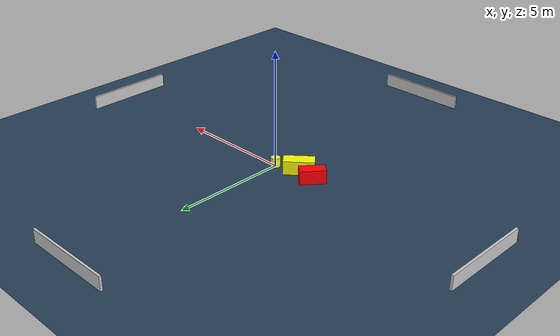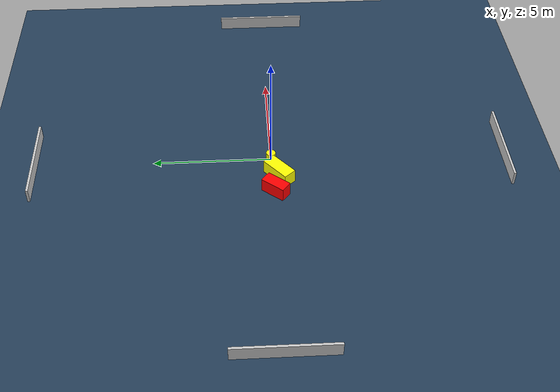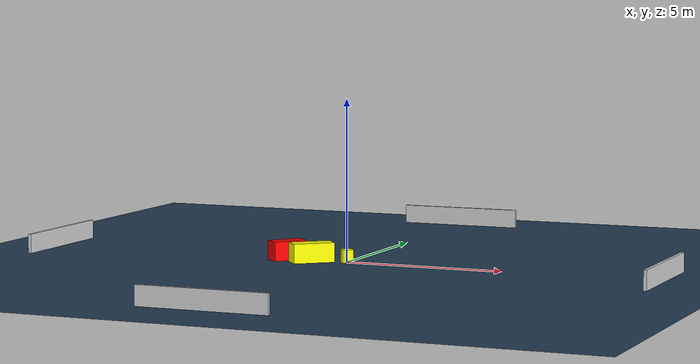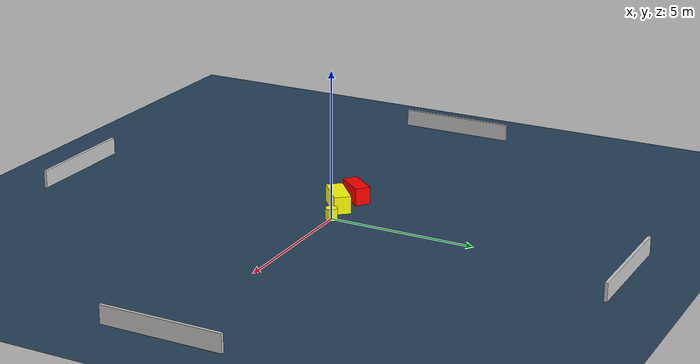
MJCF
<?xml version="1.0" ?>
<mujoco model="generated_environment">
  <option timestep="0.01" integrator="RK4" cone="elliptic"/>
  <default>
    <geom density="1"/>
  </default>
  <asset>
    <texture builtin="gradient" height="3072" name="skybox" rgb1="0.3 0.5 0.7" rgb2="0 0 0" type="skybox" width="512"/>
    <texture builtin="checker" height="300" name="groundplane" rgb1="0.2 0.3 0.4" rgb2="0.1 0.2 0.3" type="2d" width="300"/>
    <material name="groundplane" reflectance="0.2" texrepeat="5 5" texture="groundplane"/>
  </asset>
  <worldbody>
    <light dir="0 0 -1" directional="true" pos="0 0 1.5"/>
    <geom condim="3" friction="0.5 0.005 0.001" material="groundplane" name="floor" pos="0 0 0" size="0 0 0.05" type="plane"/>
    <body name="walls">
      <geom name="wall_1" condim="4" pos="-10.0 0.0 0.3" rgba="0.800000011920929 0.800000011920929 0.800000011920929 1.0" size="0.05 2.0 0.3" type="box"/>
      <geom name="wall_2" condim="4" pos="10.0 0.0 0.3" rgba="0.800000011920929 0.800000011920929 0.800000011920929 1.0" size="0.05 2.0 0.3" type="box"/>
      <geom name="wall_3" condim="4" pos="0.0 -10.0 0.3" rgba="0.800000011920929 0.800000011920929 0.800000011920929 1.0" size="2.0 0.05 0.3" type="box"/>
      <geom name="wall_4" condim="4" pos="0.0 10.0 0.3" rgba="0.800000011920929 0.800000011920929 0.800000011920929 1.0" size="2.0 0.05 0.3" type="box"/>
    </body>
    <body name="robot">
      <joint name="joint_x" type="slide" pos="0 0 0" axis="1 0 0"/>
      <joint name="joint_y" type="slide" pos="0 0 0" axis="0 1 0"/>
      <geom name="robot" type="cylinder" pos="0.0 0.0 0.2" size="0.2 0.2 0.0" mass="5.0" friction="1.0 0.005 0.0001" condim="4" rgba="1.0 1.0 0.0 1.0"/>
    </body>
    <body name="obstacle_1_movable">
      <geom name="obstacle_1_movable" condim="4" pos="-1.0450414566008952 -0.2984883365049188 0.3" euler="0 0 40.28129126137991" friction="0.0 0.005 0.001" rgba="1.0 1.0 0.0 1.0" size="0.6513947671675843 0.28529459847883365 0.3" type="box" mass="0.1"/>
      <joint type="free"/>
    </body>
    <body name="obstacle_2_static">
      <geom name="obstacle_2_static" condim="4" pos="-1.9591045856631928 -0.10242373559328148 0.3" euler="0 0 50.88412127217972" friction="0.0 0.005 0.001" rgba="1.0 0.0 0.0 1.0" size="0.5413847086191059 0.2581419748971929 0.3" type="box"/>
    </body>
  </worldbody>
  <actuator>
    <motor name="actuator_x" joint="joint_x" gear="1" ctrlrange="-1 1"/>
    <motor name="actuator_y" joint="joint_y" gear="1" ctrlrange="-1 1"/>
  </actuator>
</mujoco>
